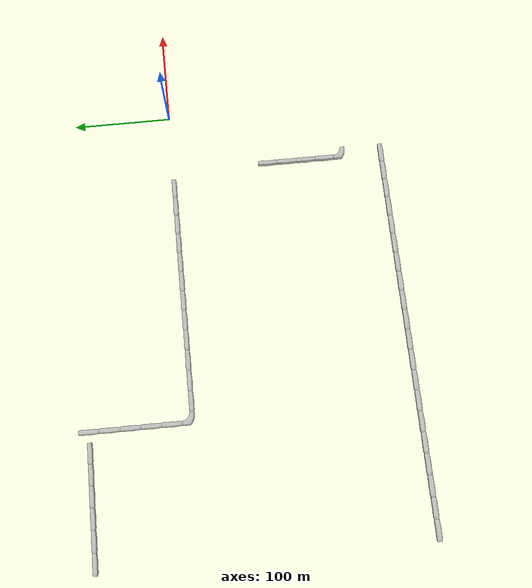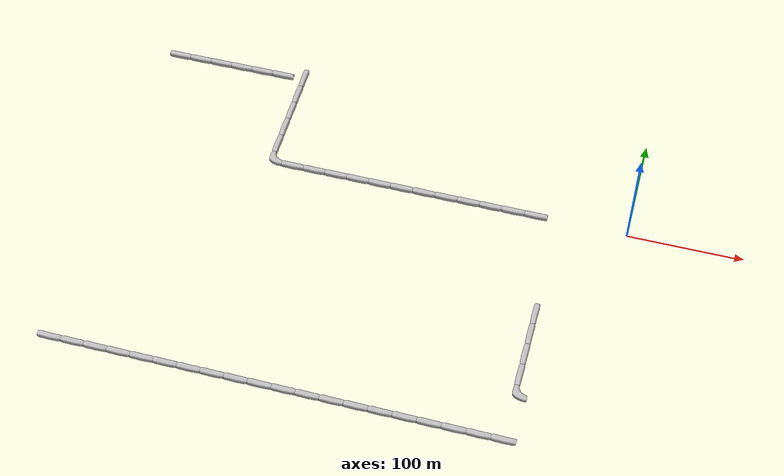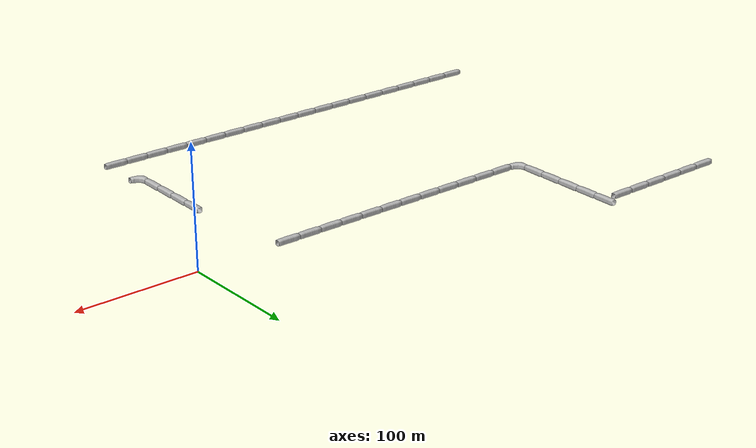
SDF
<sdf version="1.6">
 <world name="cave_8000_0">
  <include>
   <static>true</static>
   <name>cave_-3_-11</name>
   <pose>-60 -220 0 0 0 1.5707963267948966</pose>
   <uri>model://cave_straight_20m</uri>
  </include>
  <include>
   <static>true</static>
   <name>cave_-4_-11</name>
   <pose>-80 -220 0 0 0 1.5707963267948966</pose>
   <uri>model://cave_straight_20m</uri>
  </include>
  <include>
   <static>true</static>
   <name>cave_-5_-11</name>
   <pose>-100 -220 0 0 0 1.5707963267948966</pose>
   <uri>model://cave_straight_20m</uri>
  </include>
  <include>
   <static>true</static>
   <name>cave_-6_-11</name>
   <pose>-120 -220 0 0 0 1.5707963267948966</pose>
   <uri>model://cave_straight_20m</uri>
  </include>
  <include>
   <static>true</static>
   <name>cave_-7_-11</name>
   <pose>-140 -220 0 0 0 1.5707963267948966</pose>
   <uri>model://cave_straight_20m</uri>
  </include>
  <include>
   <static>true</static>
   <name>cave_-8_-11</name>
   <pose>-160 -220 0 0 0 1.5707963267948966</pose>
   <uri>model://cave_straight_20m</uri>
  </include>
  <include>
   <static>true</static>
   <name>cave_-9_-11</name>
   <pose>-180 -220 0 0 0 1.5707963267948966</pose>
   <uri>model://cave_straight_20m</uri>
  </include>
  <include>
   <static>true</static>
   <name>cave_-10_-11</name>
   <pose>-200 -220 0 0 0 1.5707963267948966</pose>
   <uri>model://cave_straight_20m</uri>
  </include>
  <include>
   <static>true</static>
   <name>cave_-11_-11</name>
   <pose>-220 -220 0 0 0 1.5707963267948966</pose>
   <uri>model://cave_straight_20m</uri>
  </include>
  <include>
   <static>true</static>
   <name>cave_-12_-11</name>
   <pose>-240 -220 0 0 0 1.5707963267948966</pose>
   <uri>model://cave_straight_20m</uri>
  </include>
  <include>
   <static>true</static>
   <name>cave_-13_-11</name>
   <pose>-260 -220 0 0 0 1.5707963267948966</pose>
   <uri>model://cave_straight_20m</uri>
  </include>
  <include>
   <static>true</static>
   <name>cave_-14_-11</name>
   <pose>-280 -220 0 0 0 1.5707963267948966</pose>
   <uri>model://cave_straight_20m</uri>
  </include>
  <include>
   <static>true</static>
   <name>cave_-15_-11</name>
   <pose>-300 -220 0 0 0 1.5707963267948966</pose>
   <uri>model://cave_straight_20m</uri>
  </include>
  <include>
   <static>true</static>
   <name>cave_-16_-11</name>
   <pose>-320 -220 0 0 0 1.5707963267948966</pose>
   <uri>model://cave_straight_20m</uri>
  </include>
  <include>
   <static>true</static>
   <name>cave_-17_-11</name>
   <pose>-340 -220 0 0 0 1.5707963267948966</pose>
   <uri>model://cave_straight_20m</uri>
  </include>
  <include>
   <static>true</static>
   <name>cave_-18_-11</name>
   <pose>-360 -220 0 0 0 1.5707963267948966</pose>
   <uri>model://cave_straight_20m</uri>
  </include>
  <include>
   <static>true</static>
   <name>cave_-19_-11</name>
   <pose>-380 -220 0 0 0 1.5707963267948966</pose>
   <uri>model://cave_straight_20m</uri>
  </include>
  <include>
   <static>true</static>
   <name>cave_-20_-11</name>
   <pose>-400 -220 0 0 0 1.5707963267948966</pose>
   <uri>model://cave_straight_20m</uri>
  </include>
  <include>
   <static>true</static>
   <name>cave_-21_-11</name>
   <pose>-420 -220 0 0 0 1.5707963267948966</pose>
   <uri>model://cave_straight_20m</uri>
  </include>
  <include>
   <static>true</static>
   <name>cave_-22_-11</name>
   <pose>-440 -220 0 0 0 1.5707963267948966</pose>
   <uri>model://cave_straight_20m</uri>
  </include>
  <include>
   <static>true</static>
   <name>cave_-22_5</name>
   <pose>-440 100 0 0 0 1.5707963267948966</pose>
   <uri>model://cave_straight_20m</uri>
  </include>
  <include>
   <static>true</static>
   <name>cave_-21_5</name>
   <pose>-420 100 0 0 0 1.5707963267948966</pose>
   <uri>model://cave_straight_20m</uri>
  </include>
  <include>
   <static>true</static>
   <name>cave_-20_5</name>
   <pose>-400 100 0 0 0 1.5707963267948966</pose>
   <uri>model://cave_straight_20m</uri>
  </include>
  <include>
   <static>true</static>
   <name>cave_-19_5</name>
   <pose>-380 100 0 0 0 1.5707963267948966</pose>
   <uri>model://cave_straight_20m</uri>
  </include>
  <include>
   <static>true</static>
   <name>cave_-18_5</name>
   <pose>-360 100 0 0 0 1.5707963267948966</pose>
   <uri>model://cave_straight_20m</uri>
  </include>
  <include>
   <static>true</static>
   <name>cave_-17_5</name>
   <pose>-340 100 0 0 0 1.5707963267948966</pose>
   <uri>model://cave_straight_20m</uri>
  </include>
  <include>
   <static>true</static>
   <name>cave_-3_-9</name>
   <pose>-60 -180 0 0 0 0.0</pose>
   <uri>model://cave_L_20m</uri>
  </include>
  <include>
   <static>true</static>
   <name>cave_-3_-8</name>
   <pose>-60 -160 0 0 0 0.0</pose>
   <uri>model://cave_straight_20m</uri>
  </include>
  <include>
   <static>true</static>
   <name>cave_-3_-7</name>
   <pose>-60 -140 0 0 0 0.0</pose>
   <uri>model://cave_straight_20m</uri>
  </include>
  <include>
   <static>true</static>
   <name>cave_-3_-6</name>
   <pose>-60 -120 0 0 0 0.0</pose>
   <uri>model://cave_straight_20m</uri>
  </include>
  <include>
   <static>true</static>
   <name>cave_-3_-5</name>
   <pose>-60 -100 0 0 0 0.0</pose>
   <uri>model://cave_straight_20m</uri>
  </include>
  <include>
   <static>true</static>
   <name>cave_-4_0</name>
   <pose>-80 0 0 0 0 1.5707963267948966</pose>
   <uri>model://cave_straight_20m</uri>
  </include>
  <include>
   <static>true</static>
   <name>cave_-5_0</name>
   <pose>-100 0 0 0 0 1.5707963267948966</pose>
   <uri>model://cave_straight_20m</uri>
  </include>
  <include>
   <static>true</static>
   <name>cave_-6_0</name>
   <pose>-120 0 0 0 0 1.5707963267948966</pose>
   <uri>model://cave_straight_20m</uri>
  </include>
  <include>
   <static>true</static>
   <name>cave_-7_0</name>
   <pose>-140 0 0 0 0 1.5707963267948966</pose>
   <uri>model://cave_straight_20m</uri>
  </include>
  <include>
   <static>true</static>
   <name>cave_-8_0</name>
   <pose>-160 0 0 0 0 1.5707963267948966</pose>
   <uri>model://cave_straight_20m</uri>
  </include>
  <include>
   <static>true</static>
   <name>cave_-9_0</name>
   <pose>-180 0 0 0 0 1.5707963267948966</pose>
   <uri>model://cave_straight_20m</uri>
  </include>
  <include>
   <static>true</static>
   <name>cave_-10_0</name>
   <pose>-200 0 0 0 0 1.5707963267948966</pose>
   <uri>model://cave_straight_20m</uri>
  </include>
  <include>
   <static>true</static>
   <name>cave_-11_0</name>
   <pose>-220 0 0 0 0 1.5707963267948966</pose>
   <uri>model://cave_straight_20m</uri>
  </include>
  <include>
   <static>true</static>
   <name>cave_-12_0</name>
   <pose>-240 0 0 0 0 1.5707963267948966</pose>
   <uri>model://cave_straight_20m</uri>
  </include>
  <include>
   <static>true</static>
   <name>cave_-13_0</name>
   <pose>-260 0 0 0 0 1.5707963267948966</pose>
   <uri>model://cave_straight_20m</uri>
  </include>
  <include>
   <static>true</static>
   <name>cave_-14_0</name>
   <pose>-280 0 0 0 0 1.5707963267948966</pose>
   <uri>model://cave_straight_20m</uri>
  </include>
  <include>
   <static>true</static>
   <name>cave_-15_0</name>
   <pose>-300 0 0 0 0 1.5707963267948966</pose>
   <uri>model://cave_straight_20m</uri>
  </include>
  <include>
   <static>true</static>
   <name>cave_-16_0</name>
   <pose>-320 0 0 0 0 0.0</pose>
   <uri>model://cave_L_20m</uri>
  </include>
  <include>
   <static>true</static>
   <name>cave_-16_1</name>
   <pose>-320 20 0 0 0 0.0</pose>
   <uri>model://cave_straight_20m</uri>
  </include>
  <include>
   <static>true</static>
   <name>cave_-16_2</name>
   <pose>-320 40 0 0 0 0.0</pose>
   <uri>model://cave_straight_20m</uri>
  </include>
  <include>
   <static>true</static>
   <name>cave_-16_3</name>
   <pose>-320 60 0 0 0 0.0</pose>
   <uri>model://cave_straight_20m</uri>
  </include>
  <include>
   <static>true</static>
   <name>cave_-16_4</name>
   <pose>-320 80 0 0 0 0.0</pose>
   <uri>model://cave_straight_20m</uri>
  </include>
  <include>
   <static>true</static>
   <name>cave_-16_5</name>
   <pose>-320 100 0 0 0 0.0</pose>
   <uri>model://cave_straight_20m</uri>
  </include>
 </world>
</sdf>
